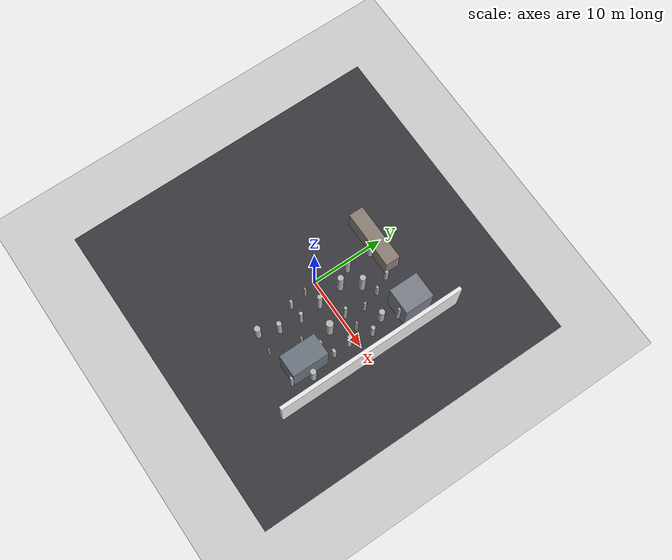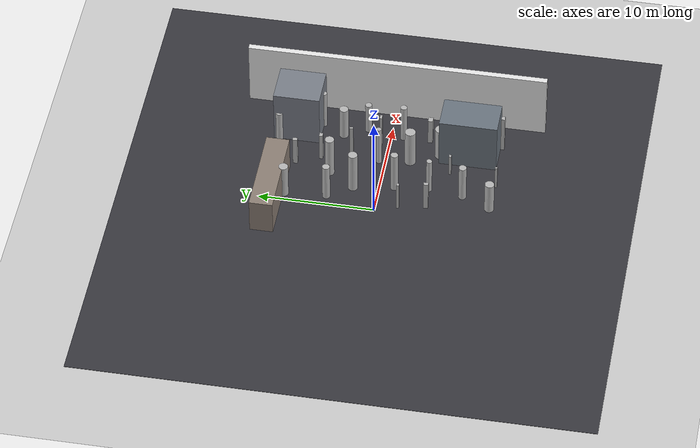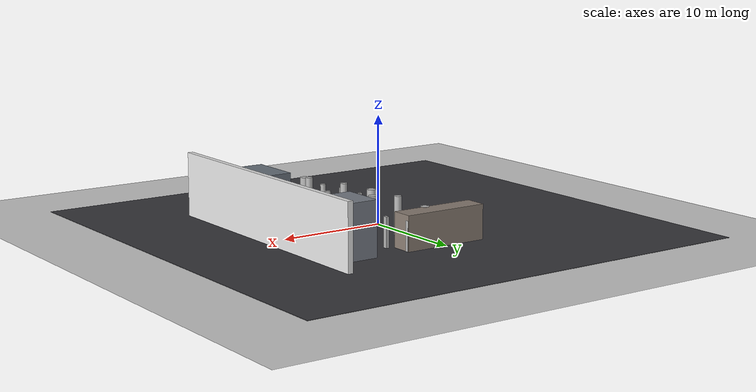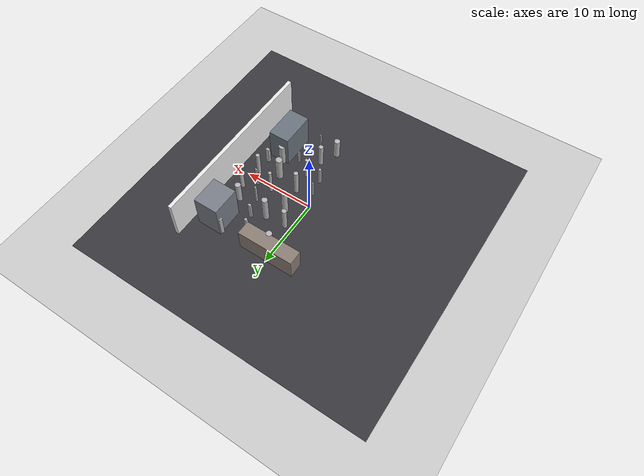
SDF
<sdf version="1.7">
 <world name="default">
  <model name="ground_plane">
   <static>1</static>
   <link name="link">
    <collision name="collision">
     <geometry><plane><normal>0 0 1</normal><size>100 100</size></plane></geometry>
     <surface>
      <contact><collide_bitmask>65535</collide_bitmask></contact>
      <friction><ode><mu>100</mu><mu2>50</mu2></ode></friction>
     </surface>
    </collision>
    <visual name="visual">
     <cast_shadows>0</cast_shadows>
     <geometry><plane><normal>0 0 1</normal><size>100 100</size></plane></geometry>
     <material>
      <script><uri>file://media/materials/scripts/gazebo.material</uri><name>Gazebo/Grey</name></script>
     </material>
    </visual>
   </link>
  </model>
  <model name="cylinder_0_0.7_0.7_3.5">
   <static>true</static>
   <pose>0.9762700785464951 4.30378732744839 1.7724415914984484 0 0 0</pose>
   <link name="link">
    <visual name="visual">
     <geometry>
      <cylinder><radius>0.3270964398016714</radius><length>3.5448831829968968</length></cylinder>
     </geometry>
    </visual>
   </link>
  </model>
  <model name="cylinder_1_0.6_0.6_4.0">
   <static>true</static>
   <pose>2.917882261333123 -1.2482557747461502 1.9818313802505148 0 0 0</pose>
   <link name="link">
    <visual name="visual">
     <geometry>
      <cylinder><radius>0.3150324556477333</radius><length>3.9636627605010295</length></cylinder>
     </geometry>
    </visual>
   </link>
  </model>
  <model name="cylinder_2_0.4_0.4_3.9">
   <static>true</static>
   <pose>5.834500761653292 0.5778983950580887 1.9627983191463305 0 0 0</pose>
   <link name="link">
    <visual name="visual">
     <geometry>
      <cylinder><radius>0.2213108174593661</radius><length>3.925596638292661</length></cylinder>
     </geometry>
    </visual>
   </link>
  </model>
  <model name="cylinder_4_0.5_0.5_3.8">
   <static>true</static>
   <pose>9.572366844655281 5.983171284334471 1.8902645881432276 0 0 0</pose>
   <link name="link">
    <visual name="visual">
     <geometry>
      <cylinder><radius>0.23548232776067998</radius><length>3.7805291762864552</length></cylinder>
     </geometry>
    </visual>
   </link>
  </model>
  <model name="cylinder_5_0.6_0.6_3.5">
   <static>true</static>
   <pose>2.798420426550477 -7.132934251819072 1.760924160875036 0 0 0</pose>
   <link name="link">
    <visual name="visual">
     <geometry>
      <cylinder><radius>0.3243985819971571</radius><length>3.521848321750072</length></cylinder>
     </geometry>
    </visual>
   </link>
  </model>
  <model name="cylinder_7_0.8_0.8_3.9">
   <static>true</static>
   <pose>2.352709941517542 2.2419144544484286 1.9718740392573122 0 0 0</pose>
   <link name="link">
    <visual name="visual">
     <geometry>
      <cylinder><radius>0.404546089731045</radius><length>3.9437480785146244</length></cylinder>
     </geometry>
    </visual>
   </link>
  </model>
  <model name="cylinder_12_0.6_0.6_3.0">
   <static>true</static>
   <pose>9.535221763806742 2.0969103949009202 1.5195938961271604 0 0 0</pose>
   <link name="link">
    <visual name="visual">
     <geometry>
      <cylinder><radius>0.2848420887729229</radius><length>3.039187792254321</length></cylinder>
     </geometry>
    </visual>
   </link>
  </model>
  <model name="cylinder_16_0.8_0.8_3.0">
   <static>true</static>
   <pose>1.7302586962016626 -9.597849076250128 1.5023477380962735 0 0 0</pose>
   <link name="link">
    <visual name="visual">
     <geometry>
      <cylinder><radius>0.4033449610388691</radius><length>3.004695476192547</length></cylinder>
     </geometry>
    </visual>
   </link>
  </model>
  <model name="cylinder_17_0.6_0.6_3.7">
   <static>true</static>
   <pose>9.054980230339702 -1.0574924276474533 1.849739637658752 0 0 0</pose>
   <link name="link">
    <visual name="visual">
     <geometry>
      <cylinder><radius>0.2892310852565401</radius><length>3.699479275317504</length></cylinder>
     </geometry>
    </visual>
   </link>
  </model>
  <model name="cylinder_18_0.9_0.9_3.6">
   <static>true</static>
   <pose>6.275956394049544 -2.0698851830603076 1.7906364363179295 0 0 0</pose>
   <link name="link">
    <visual name="visual">
     <geometry>
      <cylinder><radius>0.4645206085564558</radius><length>3.581272872635859</length></cylinder>
     </geometry>
    </visual>
   </link>
  </model>
  <model name="cylinder_19_0.8_0.8_4.0">
   <static>true</static>
   <pose>3.850631801555318 4.50508559639281 1.9780418173616119 0 0 0</pose>
   <link name="link">
    <visual name="visual">
     <geometry>
      <cylinder><radius>0.3931970597688912</radius><length>3.9560836347232238</length></cylinder>
     </geometry>
    </visual>
   </link>
  </model>
  <model name="cylinder_20_0.5_0.5_3.4">
   <static>true</static>
   <pose>3.2034707498537003 -4.198447855791119 1.714384350472883 0 0 0</pose>
   <link name="link">
    <visual name="visual">
     <geometry>
      <cylinder><radius>0.24064221926673507</radius><length>3.428768700945766</length></cylinder>
     </geometry>
    </visual>
   </link>
  </model>
  <model name="cylinder_21_0.8_0.8_3.2">
   <static>true</static>
   <pose>9.976940131357331 -7.011033906840125 1.5812464673381874 0 0 0</pose>
   <link name="link">
    <visual name="visual">
     <geometry>
      <cylinder><radius>0.3846678692851533</radius><length>3.162492934676375</length></cylinder>
     </geometry>
    </visual>
   </link>
  </model>
  <model name="cylinder_23_0.6_0.6_3.0">
   <static>true</static>
   <pose>7.327646518572585 9.510430100057718 1.505857042092501 0 0 0</pose>
   <link name="link">
    <visual name="visual">
     <geometry>
      <cylinder><radius>0.30799341934350916</radius><length>3.011714084185002</length></cylinder>
     </geometry>
    </visual>
   </link>
  </model>
  <model name="cylinder_25_0.8_0.8_3.2">
   <static>true</static>
   <pose>8.561625869311818 4.088288038470655 1.5823470782489564 0 0 0</pose>
   <link name="link">
    <visual name="visual">
     <geometry>
      <cylinder><radius>0.386443520449929</radius><length>3.1646941564979127</length></cylinder>
     </geometry>
    </visual>
   </link>
  </model>
  <model name="cylinder_28_0.8_0.8_3.2">
   <static>true</static>
   <pose>0.731584222174444 7.933425860806842 1.608448492199237 0 0 0</pose>
   <link name="link">
    <visual name="visual">
     <geometry>
      <cylinder><radius>0.3989234609300303</radius><length>3.216896984398474</length></cylinder>
     </geometry>
    </visual>
   </link>
  </model>
  <model name="cylinder_29_1.0_1.0_3.2">
   <static>true</static>
   <pose>7.453013108947907 -4.529159303687285 1.592817972152976 0 0 0</pose>
   <link name="link">
    <visual name="visual">
     <geometry>
      <cylinder><radius>0.48583749709158336</radius><length>3.185635944305952</length></cylinder>
     </geometry>
    </visual>
   </link>
  </model>
  <model name="box_1_0.4_0.3_2.3">
   <static>true</static>
   <pose>7.277112118464629 -7.649362880759338 1.1320681063451534 0 0 0</pose>
   <link name="link">
    <visual name="visual"><geometry><box><size>0.4 0.3 2.3</size></box></geometry></visual>
   </link>
  </model>
  <model name="box_3_0.2_0.2_2.3">
   <static>true</static>
   <pose>4.511887284211575 -9.771450827499379 1.1469466454003752 0 0 0</pose>
   <link name="link">
    <visual name="visual"><geometry><box><size>0.2 0.2 2.3</size></box></geometry></visual>
   </link>
  </model>
  <model name="box_4_0.4_0.3_2.7">
   <static>true</static>
   <pose>5.5739079188220675 5.5481512369750625 1.3738131379325615 0 0 0</pose>
   <link name="link">
    <visual name="visual"><geometry><box><size>0.4 0.3 2.7</size></box></geometry></visual>
   </link>
  </model>
  <model name="box_7_0.4_0.3_2.3">
   <static>true</static>
   <pose>9.485124256361004 9.806900031217879 1.1629544260466054 0 0 0</pose>
   <link name="link">
    <visual name="visual"><geometry><box><size>0.4 0.3 2.3</size></box></geometry></visual>
   </link>
  </model>
  <model name="box_9_0.3_0.4_2.8">
   <static>true</static>
   <pose>1.09375617322838 -4.258969601607405 1.4148568693335641 0 0 0</pose>
   <link name="link">
    <visual name="visual"><geometry><box><size>0.3 0.4 2.8</size></box></geometry></visual>
   </link>
  </model>
  <model name="box_10_0.3_0.4_2.8">
   <static>true</static>
   <pose>4.614181982549523 7.6344042466767945 1.3790568960774285 0 0 0</pose>
   <link name="link">
    <visual name="visual"><geometry><box><size>0.3 0.4 2.8</size></box></geometry></visual>
   </link>
  </model>
  <model name="box_11_0.4_0.3_3.6">
   <static>true</static>
   <pose>9.255406396804847 -9.662566532599206 1.8136786497018633 0 0 0</pose>
   <link name="link">
    <visual name="visual"><geometry><box><size>0.4 0.3 3.6</size></box></geometry></visual>
   </link>
  </model>
  <model name="box_16_0.2_0.3_3.1">
   <static>true</static>
   <pose>6.448134767113807 3.068423222272738 1.5369230010823904 0 0 0</pose>
   <link name="link">
    <visual name="visual"><geometry><box><size>0.2 0.3 3.1</size></box></geometry></visual>
   </link>
  </model>
  <model name="box_17_0.3_0.2_2.7">
   <static>true</static>
   <pose>0.6983370985416784 -1.9151276412148235 1.3650998770600098 0 0 0</pose>
   <link name="link">
    <visual name="visual"><geometry><box><size>0.3 0.2 2.7</size></box></geometry></visual>
   </link>
  </model>
  <model name="box_18_0.4_0.3_2.7">
   <static>true</static>
   <pose>3.815695523130591 9.746975141479364 1.3645446259967866 0 0 0</pose>
   <link name="link">
    <visual name="visual"><geometry><box><size>0.4 0.3 2.7</size></box></geometry></visual>
   </link>
  </model>
  <model name="box_23_0.3_0.2_2.1">
   <static>true</static>
   <pose>5.4622010501083835 -5.662594998179187 1.042924190608832 0 0 0</pose>
   <link name="link">
    <visual name="visual"><geometry><box><size>0.3 0.2 2.1</size></box></geometry></visual>
   </link>
  </model>
  <model name="box_24_0.2_0.3_3.5">
   <static>true</static>
   <pose>7.476643566694364 6.679632877532637 1.7712254629659103 0 0 0</pose>
   <link name="link">
    <visual name="visual"><geometry><box><size>0.2 0.3 3.5</size></box></geometry></visual>
   </link>
  </model>
  <model name="box_25_0.5_0.4_2.6">
   <static>true</static>
   <pose>9.122463191199198 -3.3911885479431225 1.2808594946322427 0 0 0</pose>
   <link name="link">
    <visual name="visual"><geometry><box><size>0.5 0.4 2.6</size></box></geometry></visual>
   </link>
  </model>
  <model name="box_27_0.4_0.2_3.3">
   <static>true</static>
   <pose>7.972753368165325 0.7434025589741484 1.6736532695846353 0 0 0</pose>
   <link name="link">
    <visual name="visual"><geometry><box><size>0.4 0.2 3.3</size></box></geometry></visual>
   </link>
  </model>
  <model name="demo_wall_east">
   <static>true</static>
   <pose>12 0 3 0 0 0</pose>
   <link name="link">
    <collision name="c"><geometry><box><size>0.5 26 6</size></box></geometry></collision>
    <visual name="v">
     <geometry><box><size>0.5 26 6</size></box></geometry>
     <material>
      <script><uri>file://media/materials/scripts/gazebo.material</uri><name>Gazebo/White</name></script>
     </material>
    </visual>
   </link>
  </model>
  <model name="demo_city_pad">
   <static>true</static>
   <pose>0 0 0.02 0 0 0</pose>
   <link name="link">
    <collision name="c"><geometry><box><size>44 44 0.04</size></box></geometry></collision>
    <visual name="v">
     <geometry><box><size>44 44 0.04</size></box></geometry>
     <material>
      <ambient>0.12 0.12 0.13 1</ambient>
      <diffuse>0.22 0.22 0.24 1</diffuse>
      <specular>0.05 0.05 0.05 1</specular>
     </material>
    </visual>
   </link>
  </model>
  <model name="demo_bldg_ne">
   <static>true</static>
   <pose>9 8 2.5 0 0 0</pose>
   <link name="l">
    <collision name="c"><geometry><box><size>3.5 4 5</size></box></geometry></collision>
    <visual name="v">
     <geometry><box><size>3.5 4 5</size></box></geometry>
     <material><ambient>0.32 0.36 0.4 1</ambient><diffuse>0.48 0.5 0.54 1</diffuse></material>
    </visual>
   </link>
  </model>
  <model name="demo_bldg_se">
   <static>true</static>
   <pose>8 -7 2.4 0 0 0</pose>
   <link name="l">
    <collision name="c"><geometry><box><size>3 5 4.8</size></box></geometry></collision>
    <visual name="v">
     <geometry><box><size>3 5 4.8</size></box></geometry>
     <material><ambient>0.28 0.32 0.36 1</ambient><diffuse>0.42 0.46 0.5 1</diffuse></material>
    </visual>
   </link>
  </model>
  <model name="demo_bldg_mid">
   <static>true</static>
   <pose>0 9 1.6 0 0 0</pose>
   <link name="l">
    <collision name="c"><geometry><box><size>8 2 3.2</size></box></geometry></collision>
    <visual name="v">
     <geometry><box><size>8 2 3.2</size></box></geometry>
     <material><ambient>0.4 0.35 0.32 1</ambient><diffuse>0.55 0.5 0.46 1</diffuse></material>
    </visual>
   </link>
  </model>
 </world>
</sdf>
